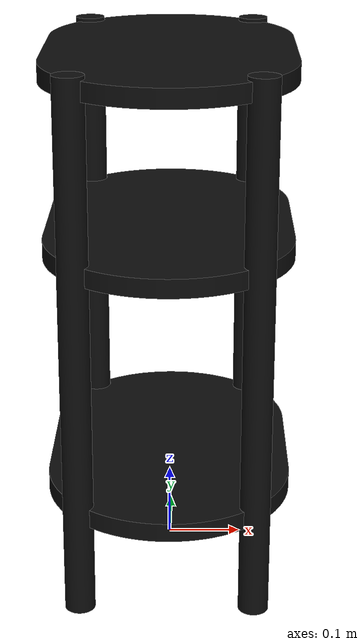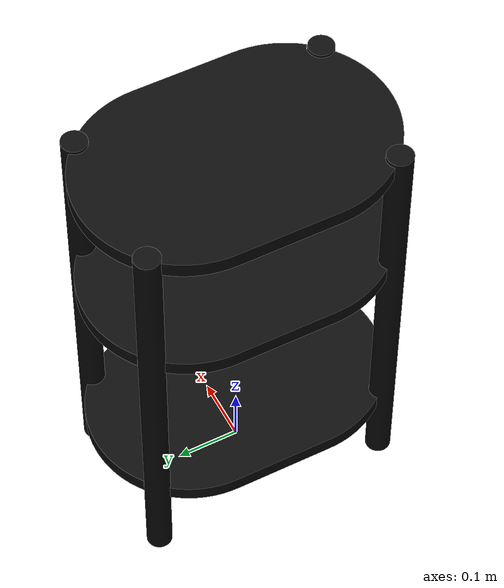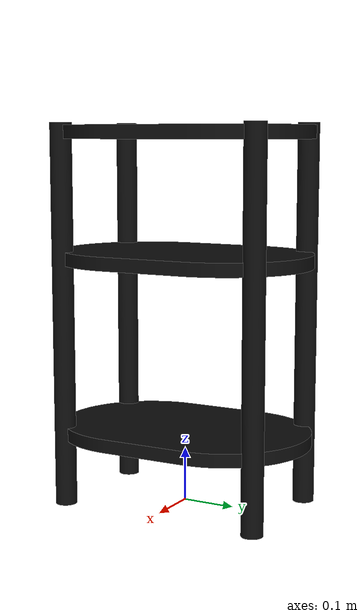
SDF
<?xml version="1.0" ?>
<sdf version="1.8">
  <model name="kachaka_shelf">
    <link name="link">
      <inertial>
        <mass>1.0</mass>
      </inertial>

      <collision name="pole1">
        <pose>-0.1283 0.02112 -0.036899 0.0 0.0 1.57</pose>
        <geometry>
          <mesh>
            <uri>model://kachaka_shelf/meshes/kachaka_shelf_pole.stl</uri>
            <scale>0.001 0.001 0.001275818</scale>
          </mesh>
        </geometry>
      </collision>

      <visual name="pole1_v">
        <pose>-0.1283 0.02112 -0.036899 0.0 0.0 1.57</pose>
        <geometry>
          <mesh>
            <uri>model://kachaka_shelf/meshes/kachaka_shelf_pole.stl</uri>
            <scale>0.001 0.001 0.001275818</scale>
          </mesh>
        </geometry>

        <material>
          <ambient>0.05 0.05 0.05 1</ambient>
          <diffuse>0.05 0.05 0.05 1</diffuse>
        </material>
      </visual>

      <collision name="pole2">
        <pose>-0.1283 0.41212 -0.036899 0.0 0.0 1.57</pose>
        <geometry>
          <mesh>
            <uri>model://kachaka_shelf/meshes/kachaka_shelf_pole.stl</uri>
            <scale>0.001 0.001 0.001275818</scale>
          </mesh>
        </geometry>
      </collision>

      <visual name="pole2_v">
        <pose>-0.1283 0.41212 -0.036899 0.0 0.0 1.57</pose>
        <geometry>
          <mesh>
            <uri>model://kachaka_shelf/meshes/kachaka_shelf_pole.stl</uri>
            <scale>0.001 0.001 0.001275818</scale>
          </mesh>
        </geometry>

        <material>
          <ambient>0.05 0.05 0.05 1</ambient>
          <diffuse>0.05 0.05 0.05 1</diffuse>
        </material>
      </visual>

      <collision name="pole3">
        <pose>0.1017 0.41212 -0.036899 0.0 0.0 1.57</pose>
        <geometry>
          <mesh>
            <uri>model://kachaka_shelf/meshes/kachaka_shelf_pole.stl</uri>
            <scale>0.001 0.001 0.001275818</scale>
          </mesh>
        </geometry>
      </collision>

      <visual name="pole3_v">
        <pose>0.1017 0.41212 -0.036899 0.0 0.0 1.57</pose>
        <geometry>
          <mesh>
            <uri>model://kachaka_shelf/meshes/kachaka_shelf_pole.stl</uri>
            <scale>0.001 0.001 0.001275818</scale>
          </mesh>
        </geometry>

        <material>
          <ambient>0.05 0.05 0.05 1</ambient>
          <diffuse>0.05 0.05 0.05 1</diffuse>
        </material>
      </visual>

      <collision name="pole4">
        <pose>0.1017 0.02112 -0.036899 0.0 0.0 1.57</pose>
        <geometry>
          <mesh>
            <uri>model://kachaka_shelf/meshes/kachaka_shelf_pole.stl</uri>
            <scale>0.001 0.001 0.001275818</scale>
          </mesh>
        </geometry>
      </collision>

      <visual name="pole4_v">
        <pose>0.1017 0.02112 -0.036899 0.0 0.0 1.57</pose>
        <geometry>
          <mesh>
            <uri>model://kachaka_shelf/meshes/kachaka_shelf_pole.stl</uri>
            <scale>0.001 0.001 0.001275818</scale>
          </mesh>
        </geometry>

        <material>
          <ambient>0.05 0.05 0.05 1</ambient>
          <diffuse>0.05 0.05 0.05 1</diffuse>
        </material>
      </visual>

      <collision name="shelf_base_plate">
        <pose>-0.1283 0.02212 -0.211 0.0 0.0 1.57</pose>
        <geometry>
          <mesh>
            <uri>model://kachaka_shelf/meshes/kachaka_shelf_plate.stl</uri>
            <scale>1 1 1</scale>
          </mesh>
        </geometry>
      </collision>

      <visual name="shelf_base_plate_v">
        <pose>-0.1283 0.02212 -0.211 0.0 0.0 1.57</pose>
        <geometry>
          <mesh>
            <uri>model://kachaka_shelf/meshes/kachaka_shelf_plate.stl</uri>
            <scale>1 1 1</scale>
          </mesh>
        </geometry>

        <material>
          <ambient>0.05 0.05 0.05 1</ambient>
          <diffuse>0.05 0.05 0.05 1</diffuse>
        </material>
      </visual>

      <collision name="shelf_middle_plate">
        <pose>-0.1283 0.02212 0.12 0.0 0.0 1.57</pose>
        <geometry>
          <mesh>
            <uri>model://kachaka_shelf/meshes/kachaka_shelf_plate.stl</uri>
            <scale>1 1 1</scale>
          </mesh>
        </geometry>
      </collision>

      <visual name="shelf_middle_plate_v">
        <pose>-0.1283 0.02212 0.12 0.0 0.0 1.57</pose>
        <geometry>
          <mesh>
            <uri>model://kachaka_shelf/meshes/kachaka_shelf_plate.stl</uri>
            <scale>1 1 1</scale>
          </mesh>
        </geometry>

        <material>
          <ambient>0.05 0.05 0.05 1</ambient>
          <diffuse>0.05 0.05 0.05 1</diffuse>
        </material>
      </visual>

      <collision name="shelf_top_plate">
        <pose>-0.1283 0.02212 0.351 0.0 0.0 1.57</pose>
        <geometry>
          <mesh>
            <uri>model://kachaka_shelf/meshes/kachaka_shelf_plate.stl</uri>
            <scale>1 1 1</scale>
          </mesh>
        </geometry>
      </collision>

      <visual name="shelf_top_plate_v">
        <pose>-0.1283 0.02212 0.351 0.0 0.0 1.57</pose>
        <geometry>
          <mesh>
            <uri>model://kachaka_shelf/meshes/kachaka_shelf_plate.stl</uri>
            <scale>1 1 1</scale>
          </mesh>
        </geometry>

        <material>
          <ambient>0.05 0.05 0.05 1</ambient>
          <diffuse>0.05 0.05 0.05 1</diffuse>
        </material>
      </visual>
    </link>
  </model>
</sdf>
